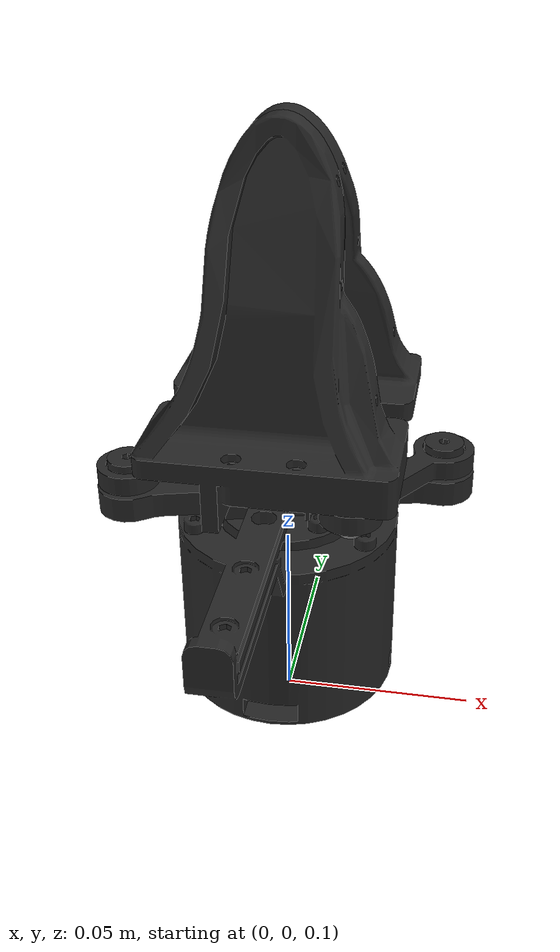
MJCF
<mujoco model="openarm_gripper_fixed_robot">
  <compiler angle="radian" meshdir="../assets" texturedir="../assets" />

  <option integrator="implicitfast" impratio="10" cone="elliptic" noslip_iterations="2">
    <flag multiccd="enable" />
  </option>

  <include file="openarm_gripper_assets.xml" />

  <worldbody>
    <include file="openarm_gripper_fixed_links.xml" />
  </worldbody>

  <include file="openarm_gripper_fixed_actuators.xml" />

  <keyframe>
    <key name="home" qpos="0 0 0 0 0 0" ctrl="0"/>
  </keyframe>

</mujoco>

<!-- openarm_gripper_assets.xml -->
<mujoco model="openarm_gripper_assets">

  <default>
    <default class="openarm_gripper">
      <joint frictionloss="0.1" armature="0.1" />
      <position kp="1000" />

      <default class="gripper_slide">
        <joint type="slide" damping="0.1" range="-1.2 1.2" />
        <position kp="100" dampratio="0.1" ctrlrange="-1.2 1.2" />
      </default>
      <default class="gripper_hinge">
        <joint type="hinge" damping="0.1" range="-31.415 31.415" />
        <position kp="10" dampratio="0.1" ctrlrange="-3.1415 3.1415" />
      </default>
      <default class="finger_slide">
        <joint type="slide" stiffness="100" damping="10.1" range="0 0.05" />
      </default>
      <default class="dm4310">
        <geom contype="0" conaffinity="0"/>
        <joint damping="0.60" frictionloss="0.052" armature="0.028"/>
        <general biastype="affine"/>
      </default>
      <default class="hinge_passive">
        <joint type="hinge" damping="0.02" range="-31.4 31.4" armature="0.001" solimplimit="0.95 0.99 0.001" solreflimit="0.005 1"/>
      </default>

      <default class="gripper_actuator">
        <position kp="500" dampratio="1" ctrlrange="-1.2 1.2" />
      </default>
      <default class="gripper_rot_actuator">
        <position kp="500" dampratio="1" ctrlrange="-3.1415 3.1415" />
      </default>

      <default class="visual">
        <geom type="mesh" contype="0" conaffinity="0" density="0" group="2" />
      </default>
      <default class="collision">
        <geom type="mesh" group="3" solref="0.002 1" solimp="0.95 0.99 0.001"/>
      </default>

      <default class="marker">
        <geom type="box" size="0.009 0.009 0.00001" material="white" contype="0" conaffinity="0" mass="0.0" />
      </default>

    </default>
  </default>

  <asset>
    <mesh name="gripper_base" content_type="model/stl" file="gripper_base.STL" />
    <mesh name="link1" content_type="model/stl" file="link1.STL" />
    <mesh name="llink2" content_type="model/stl" file="llink2.STL" />
    <mesh name="llink3" content_type="model/stl" file="llink3_simp.stl" />
    <mesh name="rlink2" content_type="model/stl" file="rlink2.STL" />
    <mesh name="rlink3" content_type="model/stl" file="rlink3_simp.stl" />

    <material name="mirror" rgba="0 0 0 1" texrepeat="5 5" reflectance="1.0" />
    <material name="white" rgba="1 1 1 1" />
    <material name="gray" rgba="0.15 0.15 0.15 1" />
    <material name="light_gray" rgba="0.6 0.6 0.6 1" />
    <material name="black" rgba="0.15 0.15 0.15 1" />
  </asset>

</mujoco>

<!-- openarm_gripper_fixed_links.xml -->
<mujoco model="openarm_gripper_fixed">

  <body name="gripper_base" pos="0 0 0.11">

    <!-- No floating joints - fixed to world -->

    <!-- Slider mechanisms -->
    <body name="lslider" pos="0.0186 -0.018344 0.0595">
      <inertial pos="0 0 0" mass="0.0005" diaginertia="1e-8 1e-8 1e-8"/>
      <joint name="lslider" axis="0 -1 0" class="finger_slide"/>
      <site name="lslider_site" pos="0 0 0" size="0.005" class="visual"/>
    </body>

    <body name="rslider" pos="-0.0186 0.018344 0.0595">
      <inertial pos="0 0 0" mass="0.0005" diaginertia="1e-8 1e-8 1e-8"/>
      <joint name="rslider" axis="0 1 0" class="finger_slide"/>
      <site name="rslider_site" pos="0 0 0" size="0.005" class="visual"/>
    </body>

    <!-- Base Link -->
    <inertial pos="-9.6677E-05 1.9775E-09 0.032528" mass="0.44703" fullinertia="0.00034877 0.00013257 0.00037145 -2.8397E-10 -8.3973E-07 -3.1026E-11" />
    <geom mesh="gripper_base" name="gripper_base_visual" pos="0 0 0" class="visual" material="gray" />
    <geom mesh="gripper_base" name="gripper_base_collision" pos="0 0 0" class="collision" />

    <body name="link1" pos="0 0 0.05">

      <inertial pos="-3.5053e-09 -2.1485e-08 0.0038423" quat="-0.0922935 0.701057 0.0922959 0.701058" mass="0.042956" diaginertia="1.8252e-05 1.77163e-05 1.6337e-06"/>
      <joint name="joint1" pos="0 0 0" axis="0 0 1" type="hinge" range="-1.05 0.05" class="dm4310" />
      <geom type="mesh" mesh="link1" class="visual" material="black" />

      <!-- Left Finger -->
      <body name="llink2" pos="0.038637 0.010353 0.002">
        <inertial pos="-0.0058663 -0.0084016 0.0097928" quat="0.625618 0.327639 -0.628367 0.326205" mass="0.0064263" diaginertia="8.75735e-07 8.01658e-07 9.7217e-08"/>
        <joint name="lj2" pos="0 0 0" axis="0 0 1" type="hinge" class="hinge_passive" />
        <geom type="mesh" mesh="llink2" class="visual" material="black" />
        <body name="llink3" pos="-0.020037 -0.028697 0.0075">
          <inertial pos="-0.01475 0.00076708 0.017141" quat="0.711571 -0.0681383 0.129684 0.687172" mass="0.081668" diaginertia="2.2198e-05 1.72462e-05 1.28177e-05"/>
          <joint name="lj3" pos="0 0 0" axis="0 0 1" type="hinge" class="hinge_passive" />
          <geom type="mesh" mesh="llink3" class="visual" material="black" />
          <geom type="mesh" mesh="llink3" class="collision" />
          <site name="end_llink3_site" pos="0 0 0" size="0.005"/>
        </body>
      </body>

      <!-- Right Finger -->
      <body name="rlink2" pos="-0.038637 -0.010353 0.002">
        <inertial pos="0.0058663 0.0084016 0.0097928" quat="0.628367 0.326205 -0.625618 0.327639" mass="0.0064263" diaginertia="8.75735e-07 8.01658e-07 9.7217e-08"/>
        <joint name="rj2" pos="0 0 0" axis="0 0 1" type="hinge" class="hinge_passive" />
        <geom type="mesh" mesh="rlink2" class="visual" material="black" />
        <body name="rlink3" pos="0.020037 0.028697 0.0075">
          <inertial pos="0.015182 -0.00076709 0.017141" quat="0.706741 0.0670458 -0.13081 0.692034" mass="0.081668" diaginertia="2.215e-05 1.72497e-05 1.27704e-05"/>
          <joint name="rj3" pos="0 0 0" axis="0 0 1" type="hinge" class="hinge_passive" />
          <geom type="mesh" mesh="rlink3" class="visual" material="black" />
          <geom type="mesh" mesh="rlink3" class="collision" />
          <site name="end_rlink3_site" pos="0 0 0" size="0.005"/>
        </body>
      </body>

    </body>
  </body>

</mujoco>

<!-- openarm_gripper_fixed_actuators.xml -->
<mujoco model="openarm_gripper_fixed_actuators">

  <actuator>
    <!-- Only finger actuator, no floating joint actuators -->
    <general name="gripper" joint="joint1" class="dm4310" biastype="affine" gainprm="-550 0 0" biasprm="25 -500 -15" forcerange="-7 7" ctrlrange="0 1"/>
  </actuator>

  <equality>
    <weld site1="lslider_site" site2="end_llink3_site" solimp="0.95 0.99 0.001" solref="0.005 1"/>
    <weld site1="rslider_site" site2="end_rlink3_site" solimp="0.95 0.99 0.001" solref="0.005 1"/>
  </equality>

</mujoco>
